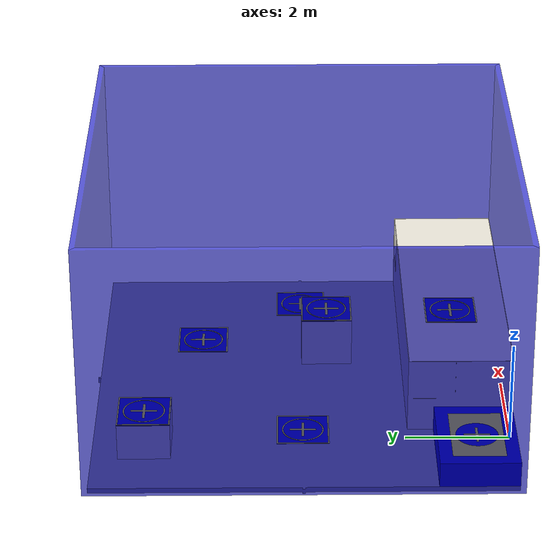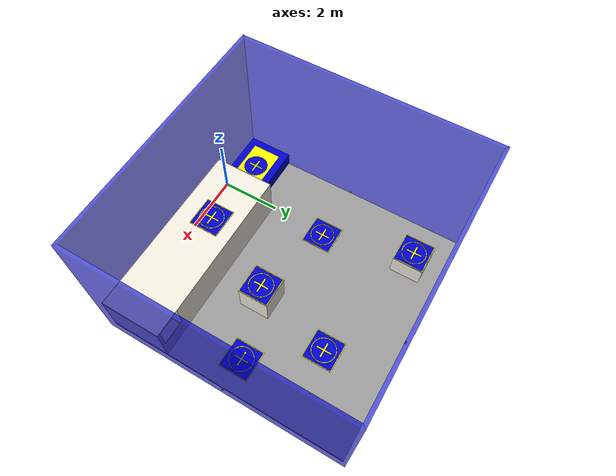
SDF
<sdf version="1.6">
 <world name="default">
  <spherical_coordinates>
   <surface_model>EARTH_WGS84</surface_model>
   <latitude_deg>47.397743</latitude_deg>
   <longitude_deg>8.545594</longitude_deg>
   <elevation>0.0</elevation>
   <heading_deg>0</heading_deg>
  </spherical_coordinates>
  <light type="directional" name="sun">
   <pose>0 0 10 0 0 0</pose>
   <diffuse>0.8 0.8 0.8 1</diffuse>
   <specular>0.2 0.2 0.2 1</specular>
   <attenuation>
    <range>1000</range>
    <constant>0.9</constant>
    <linear>0.01</linear>
    <quadratic>0.001</quadratic>
   </attenuation>
   <direction>-0.5 0.1 -0.9</direction>
  </light>
  <include>
   <uri>file:///home/lmnr31/ros2_ws/src/arena_2025_desenho_1/model.sdf</uri>
   <name>arena_2025_desenho</name>
  </include>
  <physics name="default_physics" type="ode">
   <max_step_size>0.005</max_step_size>
   <real_time_update_rate>200</real_time_update_rate>
  </physics>
 </world>
</sdf>

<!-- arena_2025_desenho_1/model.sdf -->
<sdf version='1.11'>
  <model name='arena_2025_desenho_1'>
    <link name='base_link'>
      <inertial>
        <pose>1.9700555586551109 3.7804321620855639 1.663648573963987 0 0 0</pose>
        <mass>209967.48191275919</mass>
        <inertia>
          <ixx>2460224.7715942189</ixx>
          <ixy>-47228.544594570303</ixy>
          <ixz>-52453.943802833906</ixz>
          <iyy>2411137.9333263398</iyy>
          <iyz>-41510.992787681287</iyz>
          <izz>3759459.7058464922</izz>
        </inertia>
      </inertial>
      <collision name='base_link_collision_collision'>
        <pose>0 0 0 0 0 0</pose>
        <geometry>
          <mesh>
            <scale>0.001 0.001 0.001</scale>
            <uri>meshes/base_link.stl</uri>
          </mesh>
        </geometry>
      </collision>
      <collision name='base_link_fixed_joint_lump__parede1_collision_collision_1'>
        <pose>-1.850211556812396 -0.041793670335398492 3.3306690738754701e-16 -3.0052608644297213e-17 -8.3412745167369477e-34 -1.110223024625156e-16</pose>
        <geometry>
          <mesh>
            <scale>0.001 0.001 0.001</scale>
            <uri>meshes/parede1.stl</uri>
          </mesh>
        </geometry>
      </collision>
      <collision name='base_link_fixed_joint_lump__parede4_collision_collision_2'>
        <pose>-1.850211556812396 -0.041793670335398048 -9.298117831235686e-16 -1.368455531567204e-48 -1.2325951644078309e-32 4.9303806576313238e-32</pose>
        <geometry>
          <mesh>
            <scale>0.001 0.001 0.001</scale>
            <uri>meshes/parede4.stl</uri>
          </mesh>
        </geometry>
      </collision>
      <collision name='base_link_fixed_joint_lump__parede3_collision_collision_3'>
        <pose>-1.850211556812392 -0.041793670335398492 2.2828960943854781e-15 -1.224646799147353e-16 -7.4987989133092894e-33 -1.224646799147353e-16</pose>
        <geometry>
          <mesh>
            <scale>0.001 0.001 0.001</scale>
            <uri>meshes/parede3.stl</uri>
          </mesh>
        </geometry>
      </collision>
      <collision name='base_link_fixed_joint_lump__parede2_collision_collision_4'>
        <pose>-1.850211556812396 -0.041793670335398443 1.387778780781446e-17 4.4408920985006262e-16 -1.848892746611747e-32 2.4651903288156613e-32</pose>
        <geometry>
          <mesh>
            <scale>0.001 0.001 0.001</scale>
            <uri>meshes/parede2.stl</uri>
          </mesh>
        </geometry>
      </collision>
      <collision name='base_link_fixed_joint_lump__Takeoff_Baseazul_collision_collision_5'>
        <pose>-1.850211556812396 -0.041793670335398492 3.05311331771918e-16 -7.5964541966078441e-65 -3.4211388289180098e-48 3.6977854932234928e-32</pose>
        <geometry>
          <mesh>
            <scale>0.001 0.001 0.001</scale>
            <uri>meshes/Takeoff_Baseazul.stl</uri>
          </mesh>
        </geometry>
      </collision>
      <collision name='base_link_fixed_joint_lump__Takeoff_Baseamarelo_collision_collision_6'>
        <pose>-1.850211556812396 -0.041793670335398492 1.9428902930940239e-16 -7.5964541966078441e-65 -3.4211388289180098e-48 3.6977854932234928e-32</pose>
        <geometry>
          <mesh>
            <scale>0.001 0.001 0.001</scale>
            <uri>meshes/Takeoff_Baseamarelo.stl</uri>
          </mesh>
        </geometry>
      </collision>
      <collision name='base_link_fixed_joint_lump__casa_paredes_collision_collision_7'>
        <pose>-1.850211556812396 -0.041793670335398492 1.387778780781446e-17 -7.5964541966078441e-65 -3.4211388289180098e-48 3.6977854932234928e-32</pose>
        <geometry>
          <mesh>
            <scale>0.001 0.001 0.001</scale>
            <uri>meshes/casa_paredes.stl</uri>
          </mesh>
        </geometry>
      </collision>
      <collision name='base_link_fixed_joint_lump__casa_teto_collision_collision_8'>
        <pose>-1.8502115568123949 -0.041793670335397937 5.5511151231257827e-17 2.4651903288156619e-32 -4.1053665947016131e-48 3.6977854932234928e-32</pose>
        <geometry>
          <mesh>
            <scale>0.001 0.001 0.001</scale>
            <uri>meshes/casa_teto.stl</uri>
          </mesh>
        </geometry>
      </collision>
      <collision name='base_link_fixed_joint_lump__Landing_Basesazul6_collision_collision_9'>
        <pose>-2.850211556812388 -0.041793670335396382 -1.0547118733938989e-15 5.3214118202589608e-17 -1.7267040865368829e-33 -1.2325951644078309e-32</pose>
        <geometry>
          <mesh>
            <scale>0.001 0.001 0.001</scale>
            <uri>meshes/Landing_Basesazul6.stl</uri>
          </mesh>
        </geometry>
      </collision>
      <collision name='base_link_fixed_joint_lump__Landing_Basesamarelo_6_collision_collision_10'>
        <pose>-2.850211556812388 -0.041793670335396597 -0.0010000000000011671 5.3214118202589608e-17 -1.2857220598345901e-33 -1.2325951644078309e-32</pose>
        <geometry>
          <mesh>
            <scale>0.001 0.001 0.001</scale>
            <uri>meshes/Landing_Basesamarelo_6.stl</uri>
          </mesh>
        </geometry>
      </collision>
      <collision name='base_link_fixed_joint_lump__base_movelzinza1_collision_collision_11'>
        <pose>-1.3502115568123889 3.9582063295051748 -0.0009999999999999315 5.9164567891575894e-31 -2.7369110631344193e-48 3.6977854932234928e-32</pose>
        <geometry>
          <mesh>
            <scale>0.001 0.001 0.001</scale>
            <uri>meshes/base_movelzinza1.stl</uri>
          </mesh>
        </geometry>
      </collision>
      <collision name='base_link_fixed_joint_lump__Landing_Basesazul1_collision_collision_12'>
        <pose>-1.350211556812386 3.9582063295051819 1.4901108125187079e-11 7.2723114700062026e-31 -4.105366594701635e-48 6.1629758220391547e-32</pose>
        <geometry>
          <mesh>
            <scale>0.001 0.001 0.001</scale>
            <uri>meshes/Landing_Basesazul1.stl</uri>
          </mesh>
        </geometry>
      </collision>
      <collision name='base_link_fixed_joint_lump__Landing_Basesamarelo_1_collision_collision_13'>
        <pose>-1.3502115568123829 3.958206329505193 1.4901108125187079e-11 1.0970096963229701e-30 -3.4211388289180439e-48 6.1629758220391547e-32</pose>
        <geometry>
          <mesh>
            <scale>0.001 0.001 0.001</scale>
            <uri>meshes/Landing_Basesamarelo_1.stl</uri>
          </mesh>
        </geometry>
      </collision>
      <collision name='base_link_fixed_joint_lump__Landing_Basesazul3_collision_collision_14'>
        <pose>-1.350211556812396 -2.0417936704948469 1.387778780781446e-17 -7.5964541966078441e-65 -3.4211388289180098e-48 3.6977854932234928e-32</pose>
        <geometry>
          <mesh>
            <scale>0.001 0.001 0.001</scale>
            <uri>meshes/Landing_Basesazul3.stl</uri>
          </mesh>
        </geometry>
      </collision>
      <collision name='base_link_fixed_joint_lump__Landing_Basesamarelo_3_collision_collision_15'>
        <pose>-1.350211556812396 -2.0417936704948469 0 -7.5964541966078441e-65 -3.4211388289180098e-48 3.6977854932234928e-32</pose>
        <geometry>
          <mesh>
            <scale>0.001 0.001 0.001</scale>
            <uri>meshes/Landing_Basesamarelo_3.stl</uri>
          </mesh>
        </geometry>
      </collision>
      <collision name='base_link_fixed_joint_lump__base_movelzinza2_collision_collision_16'>
        <pose>-1.3502115218144011 -3.0417936704948469 -0.0009999999999999315 -7.5964541966078441e-65 -3.4211388289180098e-48 3.6977854932234928e-32</pose>
        <geometry>
          <mesh>
            <scale>0.001 0.001 0.001</scale>
            <uri>meshes/base_movelzinza2.stl</uri>
          </mesh>
        </geometry>
      </collision>
      <collision name='base_link_fixed_joint_lump__Landing_Basesazul2_collision_collision_17'>
        <pose>-1.350211521814396 -3.0417936704948381 -0.0010000160932541751 9.8607613152626476e-32 -3.4211388289180123e-48 3.6977854932234928e-32</pose>
        <geometry>
          <mesh>
            <scale>0.001 0.001 0.001</scale>
            <uri>meshes/Landing_Basesazul2.stl</uri>
          </mesh>
        </geometry>
      </collision>
      <collision name='base_link_fixed_joint_lump__Landing_Basesamarelo_2_collision_collision_18'>
        <pose>-1.3502115218143911 -3.041793670494831 -0.0010000160932543971 1.7256332301709631e-31 -1.3684555315672051e-48 1.2325951644078309e-32</pose>
        <geometry>
          <mesh>
            <scale>0.001 0.001 0.001</scale>
            <uri>meshes/Landing_Basesamarelo_2.stl</uri>
          </mesh>
        </geometry>
      </collision>
      <collision name='base_link_fixed_joint_lump__Landing_Basesazul4_collision_collision_19'>
        <pose>-0.35021152181440129 1.4582063295051531 1.387778780781446e-17 -7.5964541966078441e-65 -3.4211388289180098e-48 3.6977854932234928e-32</pose>
        <geometry>
          <mesh>
            <scale>0.001 0.001 0.001</scale>
            <uri>meshes/Landing_Basesazul4.stl</uri>
          </mesh>
        </geometry>
      </collision>
      <collision name='base_link_fixed_joint_lump__Landing_Basesamarelo_4_collision_collision_20'>
        <pose>-0.35021152181440129 1.4582063295051531 2.775557561562891e-17 -7.5964541966078441e-65 -3.4211388289180098e-48 3.6977854932234928e-32</pose>
        <geometry>
          <mesh>
            <scale>0.001 0.001 0.001</scale>
            <uri>meshes/Landing_Basesamarelo_4.stl</uri>
          </mesh>
        </geometry>
      </collision>
      <collision name='base_link_fixed_joint_lump__Landing_Basesazul5_collision_collision_21'>
        <pose>-1.8502115218143811 0.9582063295051606 1.387778780781446e-17 2.2186712959340961e-31 -2.7369110631344132e-48 3.6977854932234928e-32</pose>
        <geometry>
          <mesh>
            <scale>0.001 0.001 0.001</scale>
            <uri>meshes/Landing_Basesazul5.stl</uri>
          </mesh>
        </geometry>
      </collision>
      <collision name='base_link_fixed_joint_lump__Landing_Basesamarelo_5_collision_collision_22'>
        <pose>-1.8502115218144 0.95820632950515261 1.387778780781446e-17 -7.5964541966078474e-65 -3.4211388289180098e-48 3.6977854932234928e-32</pose>
        <geometry>
          <mesh>
            <scale>0.001 0.001 0.001</scale>
            <uri>meshes/Landing_Basesamarelo_5.stl</uri>
          </mesh>
        </geometry>
      </collision>

      #visuals cores

      <visual name='base_link_visual_visual'>
        <pose>0 0 0 0 0 0</pose>
        <geometry>
          <mesh>
            <scale>0.001 0.001 0.001</scale>
            <uri>meshes/base_link.stl</uri>
          </mesh>
        </geometry>
        <material>
          <ambient>0.4 0.4 0.4 1</ambient>
          <diffuse>0.6 0.6 0.6 1</diffuse>
          <specular>0.8 0.8 0.8 1</specular>
        </material>
      </visual>
      <visual name='base_link_fixed_joint_lump__parede1_visual_visual_1'>
        <pose>-1.850211556812396 -0.041793670335398492 3.3306690738754701e-16 -3.0052608644297213e-17 -8.3412745167369477e-34 -1.110223024625156e-16</pose>
        <geometry>
          <mesh>
            <scale>0.001 0.001 0.001</scale>
            <uri>meshes/parede1.stl</uri>
          </mesh>
        </geometry>
        <material>
          <ambient>0.0 0.0 0.5 0.65</ambient>
          <diffuse>0.0 0.0 0.8 0.65</diffuse>
          <specular>0.3 0.3 0.8 0.65</specular>
          <transparency>0.65</transparency>
        </material>
      </visual>
      <visual name='base_link_fixed_joint_lump__parede4_visual_visual_2'>
        <pose>-1.850211556812396 -0.041793670335398048 -9.298117831235686e-16 -1.368455531567204e-48 -1.2325951644078309e-32 4.9303806576313238e-32</pose>
        <geometry>
          <mesh>
            <scale>0.001 0.001 0.001</scale>
            <uri>meshes/parede4.stl</uri>
          </mesh>
        </geometry>
        <material>
          <ambient>0.0 0.0 0.5 0.65</ambient>
          <diffuse>0.0 0.0 0.8 0.65</diffuse>
          <specular>0.3 0.3 0.8 0.65</specular>
          <transparency>0.65</transparency>
        </material>
      </visual>
      <visual name='base_link_fixed_joint_lump__parede3_visual_visual_3'>
        <pose>-1.850211556812392 -0.041793670335398492 2.2828960943854781e-15 -1.224646799147353e-16 -7.4987989133092894e-33 -1.224646799147353e-16</pose>
        <geometry>
          <mesh>
            <scale>0.001 0.001 0.001</scale>
            <uri>meshes/parede3.stl</uri>
          </mesh>
        </geometry>
        <material>
          <ambient>0.0 0.0 0.5 0.65</ambient>
          <diffuse>0.0 0.0 0.8 0.65</diffuse>
          <specular>0.3 0.3 0.8 0.65</specular>
          <transparency>0.65</transparency>
        </material>
      </visual>
      <visual name='base_link_fixed_joint_lump__parede2_visual_visual_4'>
        <pose>-1.850211556812396 -0.041793670335398443 1.387778780781446e-17 4.4408920985006262e-16 -1.848892746611747e-32 2.4651903288156613e-32</pose>
        <geometry>
          <mesh>
            <scale>0.001 0.001 0.001</scale>
            <uri>meshes/parede2.stl</uri>
          </mesh>
        </geometry>
        <material>
          <ambient>0.0 0.0 0.5 0.65</ambient>
          <diffuse>0.0 0.0 0.8 0.65</diffuse>
          <specular>0.3 0.3 0.8 0.65</specular>
          <transparency>0.65</transparency>
        </material>
      </visual>
      <visual name='base_link_fixed_joint_lump__Takeoff_Baseazul_visual_visual_5'>
        <pose>-1.850211556812396 -0.041793670335398492 3.05311331771918e-16 -7.5964541966078441e-65 -3.4211388289180098e-48 3.6977854932234928e-32</pose>
        <geometry>
          <mesh>
            <scale>0.001 0.001 0.001</scale>
            <uri>meshes/Takeoff_Baseazul.stl</uri>
          </mesh>
        </geometry>
        <material>
          <ambient>0.0 0.0 0.5 1</ambient>
          <diffuse>0.0 0.0 0.8 1</diffuse>
          <specular>0.3 0.3 0.8 1</specular>
        </material>
      </visual>
      <visual name='base_link_fixed_joint_lump__Takeoff_Baseamarelo_visual_visual_6'>
        <pose>-1.850211556812396 -0.041793670335398492 1.9428902930940239e-16 -7.5964541966078441e-65 -3.4211388289180098e-48 3.6977854932234928e-32</pose>
        <geometry>
          <mesh>
            <scale>0.001 0.001 0.001</scale>
            <uri>meshes/Takeoff_Baseamarelo.stl</uri>
          </mesh>
        </geometry>
        <material>
          <ambient>0.8 0.8 0.0 1</ambient>
          <diffuse>1.0 1.0 0.0 1</diffuse>
           <specular>0.8 0.8 0.3 1</specular>
        </material>
      </visual>
      <visual name='base_link_fixed_joint_lump__casa_paredes_visual_visual_7'>
        <pose>-1.850211556812396 -0.041793670335398492 1.387778780781446e-17 -7.5964541966078441e-65 -3.4211388289180098e-48 3.6977854932234928e-32</pose>
        <geometry>
          <mesh>
            <scale>0.001 0.001 0.001</scale>
            <uri>meshes/casa_paredes.stl</uri>
          </mesh>
        </geometry>
        <material>
          <ambient>0.92 0.90 0.85 1</ambient>
          <diffuse>0.94 0.92 0.87 1</diffuse>
          <specular>0.14 0.14 0.13 1</specular>
        </material>
      </visual>
      <visual name='base_link_fixed_joint_lump__casa_teto_visual_visual_8'>
        <pose>-1.8502115568123949 -0.041793670335397937 5.5511151231257827e-17 2.4651903288156619e-32 -4.1053665947016131e-48 3.6977854932234928e-32</pose>
        <geometry>
          <mesh>
            <scale>0.001 0.001 0.001</scale>
            <uri>meshes/casa_teto.stl</uri>
          </mesh>
        </geometry>
        <material>
          <ambient>0.92 0.90 0.85 1</ambient>
          <diffuse>0.94 0.92 0.87 1</diffuse>
          <specular>0.14 0.14 0.13 1</specular>
        </material>
      </visual>
      <visual name='base_link_fixed_joint_lump__Landing_Basesazul6_visual_visual_9'>
        <pose>-2.850211556812388 -0.041793670335396382 -1.0547118733938989e-15 5.3214118202589608e-17 -1.7267040865368829e-33 -1.2325951644078309e-32</pose>
        <geometry>
          <mesh>
            <scale>0.001 0.001 0.001</scale>
            <uri>meshes/Landing_Basesazul6.stl</uri>
          </mesh>
        </geometry>
        <material>
          <ambient>0.0 0.0 0.5 1</ambient>
          <diffuse>0.0 0.0 0.8 1</diffuse>
          <specular>0.3 0.3 0.8 1</specular>
        </material>
      </visual>
      <visual name='base_link_fixed_joint_lump__Landing_Basesamarelo_6_visual_visual_10'>
        <pose>-2.850211556812388 -0.041793670335396597 -0.0010000000000011671 5.3214118202589608e-17 -1.2857220598345901e-33 -1.2325951644078309e-32</pose>
        <geometry>
          <mesh>
            <scale>0.001 0.001 0.001</scale>
            <uri>meshes/Landing_Basesamarelo_6.stl</uri>
          </mesh>
        </geometry>
        <material>
          <ambient>0.8 0.8 0.0 1</ambient>
          <diffuse>1.0 1.0 0.0 1</diffuse>
           <specular>0.8 0.8 0.3 1</specular>
        </material>
      </visual>
      <visual name='base_link_fixed_joint_lump__base_movelzinza1_visual_visual_11'>
        <pose>-1.3502115568123889 3.9582063295051748 -0.0009999999999999315 5.9164567891575894e-31 -2.7369110631344193e-48 3.6977854932234928e-32</pose>
        <geometry>
          <mesh>
            <scale>0.001 0.001 0.001</scale>
            <uri>meshes/base_movelzinza1.stl</uri>
          </mesh>
        </geometry>
        <material>
          <ambient>0.92 0.90 0.85 1</ambient>
          <diffuse>0.94 0.92 0.87 1</diffuse>
          <specular>0.14 0.14 0.13 1</specular>
        </material>
      </visual>
      <visual name='base_link_fixed_joint_lump__Landing_Basesazul1_visual_visual_12'>
        <pose>-1.350211556812386 3.9582063295051819 1.4901108125187079e-11 7.2723114700062026e-31 -4.105366594701635e-48 6.1629758220391547e-32</pose>
        <geometry>
          <mesh>
            <scale>0.001 0.001 0.001</scale>
            <uri>meshes/Landing_Basesazul1.stl</uri>
          </mesh>
        </geometry>
        <material>
          <ambient>0.0 0.0 0.5 1</ambient>
          <diffuse>0.0 0.0 0.8 1</diffuse>
          <specular>0.3 0.3 0.8 1</specular>
        </material>
      </visual>
      <visual name='base_link_fixed_joint_lump__Landing_Basesamarelo_1_visual_visual_13'>
        <pose>-1.3502115568123829 3.958206329505193 1.4901108125187079e-11 1.0970096963229701e-30 -3.4211388289180439e-48 6.1629758220391547e-32</pose>
        <geometry>
          <mesh>
            <scale>0.001 0.001 0.001</scale>
            <uri>meshes/Landing_Basesamarelo_1.stl</uri>
          </mesh>
        </geometry>
        <material>
          <ambient>0.8 0.8 0.0 1</ambient>
          <diffuse>1.0 1.0 0.0 1</diffuse>
           <specular>0.8 0.8 0.3 1</specular>
        </material>
      </visual>
      <visual name='base_link_fixed_joint_lump__Landing_Basesazul3_visual_visual_14'>
        <pose>-1.350211556812396 -2.0417936704948469 1.387778780781446e-17 -7.5964541966078441e-65 -3.4211388289180098e-48 3.6977854932234928e-32</pose>
        <geometry>
          <mesh>
            <scale>0.001 0.001 0.001</scale>
            <uri>meshes/Landing_Basesazul3.stl</uri>
          </mesh>
        </geometry>
        <material>
          <ambient>0.0 0.0 0.5 1</ambient>
          <diffuse>0.0 0.0 0.8 1</diffuse>
          <specular>0.3 0.3 0.8 1</specular>
        </material>
      </visual>
      <visual name='base_link_fixed_joint_lump__Landing_Basesamarelo_3_visual_visual_15'>
        <pose>-1.350211556812396 -2.0417936704948469 0 -7.5964541966078441e-65 -3.4211388289180098e-48 3.6977854932234928e-32</pose>
        <geometry>
          <mesh>
            <scale>0.001 0.001 0.001</scale>
            <uri>meshes/Landing_Basesamarelo_3.stl</uri>
          </mesh>
        </geometry>
        <material>
          <ambient>0.8 0.8 0.0 1</ambient>
          <diffuse>1.0 1.0 0.0 1</diffuse>
           <specular>0.8 0.8 0.3 1</specular>
        </material>
      </visual>
      <visual name='base_link_fixed_joint_lump__base_movelzinza2_visual_visual_16'>
        <pose>-1.3502115218144011 -3.0417936704948469 -0.0009999999999999315 -7.5964541966078441e-65 -3.4211388289180098e-48 3.6977854932234928e-32</pose>
        <geometry>
          <mesh>
            <scale>0.001 0.001 0.001</scale>
            <uri>meshes/base_movelzinza2.stl</uri>
          </mesh>
        </geometry>
        <material>
          <ambient>0.92 0.90 0.85 1</ambient>
          <diffuse>0.94 0.92 0.87 1</diffuse>
          <specular>0.14 0.14 0.13 1</specular>
        </material>
      </visual>
      <visual name='base_link_fixed_joint_lump__Landing_Basesazul2_visual_visual_17'>
        <pose>-1.350211521814396 -3.0417936704948381 -0.0010000160932541751 9.8607613152626476e-32 -3.4211388289180123e-48 3.6977854932234928e-32</pose>
        <geometry>
          <mesh>
            <scale>0.001 0.001 0.001</scale>
            <uri>meshes/Landing_Basesazul2.stl</uri>
          </mesh>
        </geometry>
        <material>
          <ambient>0.0 0.0 0.5 1</ambient>
          <diffuse>0.0 0.0 0.8 1</diffuse>
          <specular>0.3 0.3 0.8 1</specular>
        </material>
      </visual>
      <visual name='base_link_fixed_joint_lump__Landing_Basesamarelo_2_visual_visual_18'>
        <pose>-1.3502115218143911 -3.041793670494831 -0.0010000160932543971 1.7256332301709631e-31 -1.3684555315672051e-48 1.2325951644078309e-32</pose>
        <geometry>
          <mesh>
            <scale>0.001 0.001 0.001</scale>
            <uri>meshes/Landing_Basesamarelo_2.stl</uri>
          </mesh>
        </geometry>
        <material>
          <ambient>0.8 0.8 0.0 1</ambient>
          <diffuse>1.0 1.0 0.0 1</diffuse>
           <specular>0.8 0.8 0.3 1</specular>
        </material>
      </visual>
      <visual name='base_link_fixed_joint_lump__Landing_Basesazul4_visual_visual_19'>
        <pose>-0.35021152181440129 1.4582063295051531 1.387778780781446e-17 -7.5964541966078441e-65 -3.4211388289180098e-48 3.6977854932234928e-32</pose>
        <geometry>
          <mesh>
            <scale>0.001 0.001 0.001</scale>
            <uri>meshes/Landing_Basesazul4.stl</uri>
          </mesh>
        </geometry>
        <material>
          <ambient>0.0 0.0 0.5 1</ambient>
          <diffuse>0.0 0.0 0.8 1</diffuse>
          <specular>0.3 0.3 0.8 1</specular>
        </material>
      </visual>
      <visual name='base_link_fixed_joint_lump__Landing_Basesamarelo_4_visual_visual_20'>
        <pose>-0.35021152181440129 1.4582063295051531 2.775557561562891e-17 -7.5964541966078441e-65 -3.4211388289180098e-48 3.6977854932234928e-32</pose>
        <geometry>
          <mesh>
            <scale>0.001 0.001 0.001</scale>
            <uri>meshes/Landing_Basesamarelo_4.stl</uri>
          </mesh>
        </geometry>
        <material>
          <ambient>0.8 0.8 0.0 1</ambient>
          <diffuse>1.0 1.0 0.0 1</diffuse>
           <specular>0.8 0.8 0.3 1</specular>
        </material>
      </visual>
      <visual name='base_link_fixed_joint_lump__Landing_Basesazul5_visual_visual_21'>
        <pose>-1.8502115218143811 0.9582063295051606 1.387778780781446e-17 2.2186712959340961e-31 -2.7369110631344132e-48 3.6977854932234928e-32</pose>
        <geometry>
          <mesh>
            <scale>0.001 0.001 0.001</scale>
            <uri>meshes/Landing_Basesazul5.stl</uri>
          </mesh>
        </geometry>
        <material>
          <ambient>0.0 0.0 0.5 1</ambient>
          <diffuse>0.0 0.0 0.8 1</diffuse>
          <specular>0.3 0.3 0.8 1</specular>
        </material>
      </visual>
      <visual name='base_link_fixed_joint_lump__Landing_Basesamarelo_5_visual_visual_22'>
        <pose>-1.8502115218144 0.95820632950515261 1.387778780781446e-17 -7.5964541966078474e-65 -3.4211388289180098e-48 3.6977854932234928e-32</pose>
        <geometry>
          <mesh>
            <scale>0.001 0.001 0.001</scale>
            <uri>meshes/Landing_Basesamarelo_5.stl</uri>
          </mesh>
        </geometry>
        <material>
          <ambient>0.8 0.8 0.0 1</ambient>
          <diffuse>1.0 1.0 0.0 1</diffuse>
           <specular>0.8 0.8 0.3 1</specular>
        </material>
      </visual>
    </link>
    <frame name='base_link_Rígido-31' attached_to='base_link'>
      <pose>-1.900211556963544 3.958206327635382 0.050000001821330083 -1.110223024625156e-16 -1.5707963267948966 0</pose>
    </frame>
    <frame name='parede1' attached_to='base_link_Rígido-31'>
      <pose>0 0 0 0 0 0</pose>
    </frame>
    <frame name='base_link_Rígido-32' attached_to='base_link'>
      <pose>2.1497884430364582 8.0082063276353832 0.050000001821330423 -1.5707963267948959 0 -1.110223024625156e-16</pose>
    </frame>
    <frame name='parede4' attached_to='base_link_Rígido-32'>
      <pose>0 0 0 0 0 0</pose>
    </frame>
    <frame name='base_link_Rígido-33' attached_to='base_link'>
      <pose>6.1997884430364598 3.9582063176353812 0.050000001821330083 3.1415926535897931 -1.5707963267948966 0</pose>
    </frame>
    <frame name='parede3' attached_to='base_link_Rígido-33'>
      <pose>0 0 0 0 0 0</pose>
    </frame>
    <frame name='base_link_Rígido-34' attached_to='base_link'>
      <pose>2.1497884430364569 -0.091793672364618356 0.050000001821329743 1.570796326794897 0 -1.110223024625156e-16</pose>
    </frame>
    <frame name='parede2' attached_to='base_link_Rígido-34'>
      <pose>0 0 0 0 0 0</pose>
    </frame>
    <frame name='Takeoff_Baseazul_Rígido-44' attached_to='Takeoff_Baseazul'>
      <pose>-1.4210854715201999e-16 0 0.49099999999999988 0 0 1.368455531567204e-48</pose>
    </frame>
    <frame name='Takeoff_Baseamarelo' attached_to='Takeoff_Baseazul_Rígido-44'>
      <pose>0 0 0 0 0 0</pose>
    </frame>
    <frame name='base_link_Rígido-35' attached_to='base_link'>
      <pose>-0.85021155696354367 0.70820632763538205 0.099000001821329814 8.3266726846886765e-17 4.6222318665293667e-33 -1.110223024625156e-16</pose>
    </frame>
    <frame name='Takeoff_Baseazul' attached_to='base_link_Rígido-35'>
      <pose>0 0 0 0 0 0</pose>
    </frame>
    <frame name='Landing_Basesazul6_Rígido-50' attached_to='Landing_Basesazul6'>
      <pose>0 -1.4210854715201999e-16 0.0050000000000000001 -1.2325951644078309e-32 -6.8422776578360239e-49 -1.2325951644078309e-32</pose>
    </frame>
    <frame name='Landing_Basesamarelo_6' attached_to='Landing_Basesazul6_Rígido-50'>
      <pose>0 0 0 0 0 0</pose>
    </frame>
    <frame name='casa_teto_Rígido-67' attached_to='casa_teto'>
      <pose>-0.98800003000000058 0.08800454000000002 0.0039999999999997728 1.2325951644078309e-32 6.8422776578360209e-49 -1.2325951644078309e-32</pose>
    </frame>
    <frame name='Landing_Basesazul6' attached_to='casa_teto_Rígido-67'>
      <pose>0 0 0 0 0 0</pose>
    </frame>
    <frame name='casa_paredes_Rígido-42' attached_to='casa_paredes'>
      <pose>-5.6843418860808016e-16 0 1.522 0 0 1.368455531567204e-48</pose>
    </frame>
    <frame name='casa_teto' attached_to='casa_paredes_Rígido-42'>
      <pose>0 0 0 0 0 0</pose>
    </frame>
    <frame name='base_link_Rígido-41' attached_to='base_link'>
      <pose>3.1377884730364571 0.95820178763538155 0.073000001821329846 8.3266726846886765e-17 4.6222318665293667e-33 -1.110223024625156e-16</pose>
    </frame>
    <frame name='casa_paredes' attached_to='base_link_Rígido-41'>
      <pose>0 0 0 0 0 0</pose>
    </frame>
    <frame name='Landing_Basesazul1_Rígido-57' attached_to='Landing_Basesazul1'>
      <pose>0 0 0.01099999999999994 -2.465190328815663e-32 2.7369110631344089e-48 1.2325951644078309e-32</pose>
    </frame>
    <frame name='Landing_Basesamarelo_1' attached_to='Landing_Basesazul1_Rígido-57'>
      <pose>0 0 0 0 0 0</pose>
    </frame>
    <frame name='base_movelzinza1_Rígido-56' attached_to='base_movelzinza1'>
      <pose>0 0 0.72999999999999998 2.4651903288156619e-32 -2.0526832973508063e-48 -1.2325951644078309e-32</pose>
    </frame>
    <frame name='Landing_Basesazul1' attached_to='base_movelzinza1_Rígido-56'>
      <pose>0 0 0 0 0 0</pose>
    </frame>
    <frame name='base_link_Rígido-62' attached_to='base_link'>
      <pose>-0.35021155696354273 6.9582063276353816 0.099000001821330341 8.3266726846886765e-17 4.6222318665293667e-33 -1.110223024625156e-16</pose>
    </frame>
    <frame name='base_movelzinza1' attached_to='base_link_Rígido-62'>
      <pose>0 0 0 0 0 0</pose>
    </frame>
    <frame name='Landing_Basesazul3_Rígido-46' attached_to='Landing_Basesazul3'>
      <pose>-2.8421709430404008e-16 0 0.0059999999999999967 0 0 1.368455531567204e-48</pose>
    </frame>
    <frame name='Landing_Basesamarelo_3' attached_to='Landing_Basesazul3_Rígido-46'>
      <pose>0 0 0 0 0 0</pose>
    </frame>
    <frame name='base_link_Rígido-63' attached_to='base_link'>
      <pose>0.149788443036457 3.958206327635382 0.099000001821330091 8.3266726846886765e-17 4.6222318665293667e-33 -1.110223024625156e-16</pose>
    </frame>
    <frame name='Landing_Basesazul3' attached_to='base_link_Rígido-63'>
      <pose>0 0 0 0 0 0</pose>
    </frame>
    <frame name='Landing_Basesazul2_Rígido-61' attached_to='Landing_Basesazul2'>
      <pose>-5.6843418860808016e-16 0 0.0099999799999997661 1.2325951644078309e-32 6.8422776578360209e-49 -1.2325951644078309e-32</pose>
    </frame>
    <frame name='Landing_Basesamarelo_2' attached_to='Landing_Basesazul2_Rígido-61'>
      <pose>0 0 0 0 0 0</pose>
    </frame>
    <frame name='base_movelzinza2_Rígido-60' attached_to='base_movelzinza2'>
      <pose>-5.6843418860808016e-16 0 0.97999999999999998 0 0 1.368455531567204e-48</pose>
    </frame>
    <frame name='Landing_Basesazul2' attached_to='base_movelzinza2_Rígido-60'>
      <pose>0 0 0 0 0 0</pose>
    </frame>
    <frame name='base_link_Rígido-64' attached_to='base_link'>
      <pose>3.149788483036458 3.4582063276353812 0.09900000182133005 8.3266726846886765e-17 4.6222318665293667e-33 -1.110223024625156e-16</pose>
    </frame>
    <frame name='base_movelzinza2' attached_to='base_link_Rígido-64'>
      <pose>0 0 0 0 0 0</pose>
    </frame>
    <frame name='Landing_Basesazul4_Rígido-48' attached_to='Landing_Basesazul4'>
      <pose>0 0 0.0050000000000000001 0 0 1.368455531567204e-48</pose>
    </frame>
    <frame name='Landing_Basesamarelo_4' attached_to='Landing_Basesazul4_Rígido-48'>
      <pose>0 0 0 0 0 0</pose>
    </frame>
    <frame name='base_link_Rígido-65' attached_to='base_link'>
      <pose>3.6497884830364589 5.9582063276353816 0.099000001821330258 8.3266726846886765e-17 4.6222318665293667e-33 -1.110223024625156e-16</pose>
    </frame>
    <frame name='Landing_Basesazul4' attached_to='base_link_Rígido-65'>
      <pose>0 0 0 0 0 0</pose>
    </frame>
    <frame name='Landing_Basesazul5_Rígido-49' attached_to='Landing_Basesazul5'>
      <pose>0 0 0.0050000000000000001 1.2325951644078309e-32 -6.8422776578360224e-49 1.368455531567204e-48</pose>
    </frame>
    <frame name='Landing_Basesamarelo_5' attached_to='Landing_Basesazul5_Rígido-49'>
      <pose>0 0 0 0 0 0</pose>
    </frame>
    <frame name='base_link_Rígido-66' attached_to='base_link'>
      <pose>5.1497884830364589 3.9582063276353812 0.099000001821330091 8.3266726846886765e-17 4.6222318665293667e-33 -1.110223024625156e-16</pose>
    </frame>
    <frame name='Landing_Basesazul5' attached_to='base_link_Rígido-66'>
      <pose>0 0 0 0 0 0</pose>
    </frame>
  </model>
</sdf>
